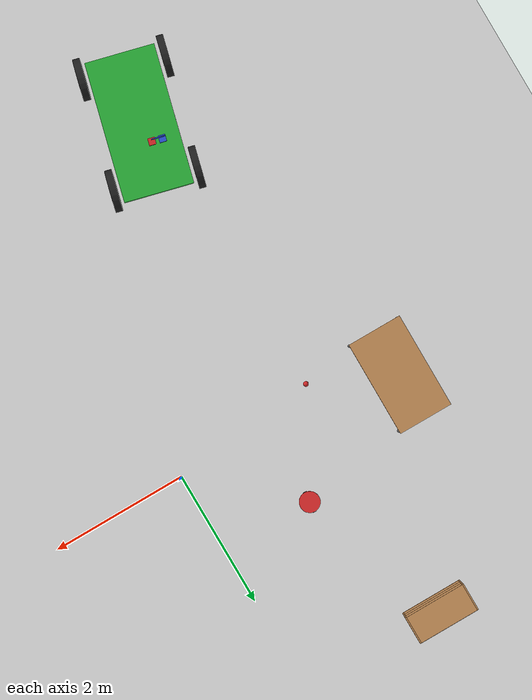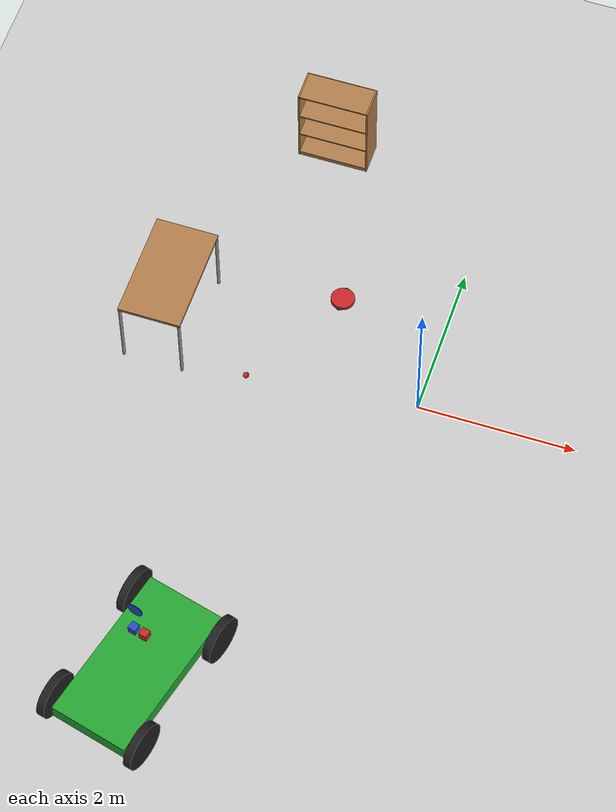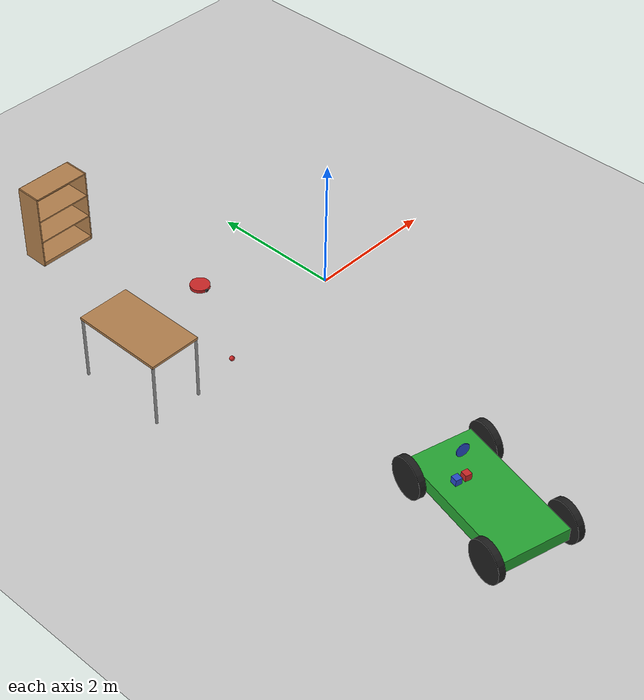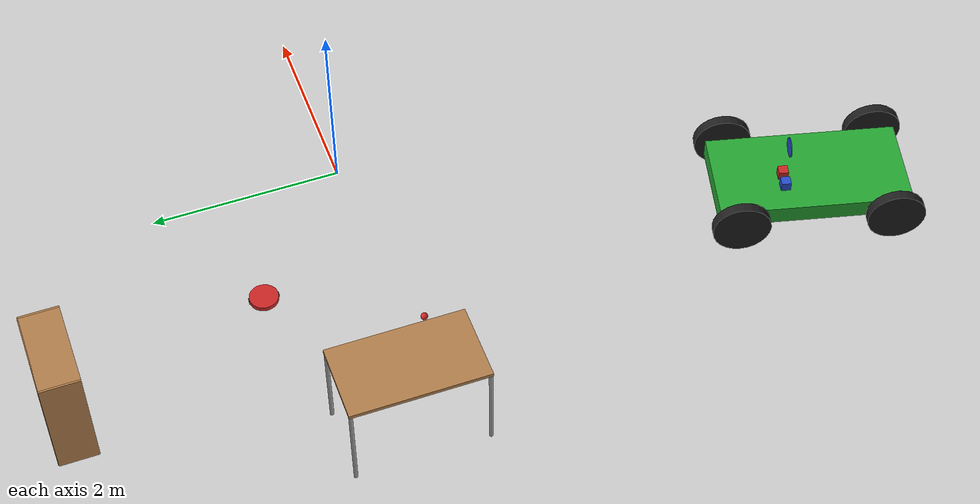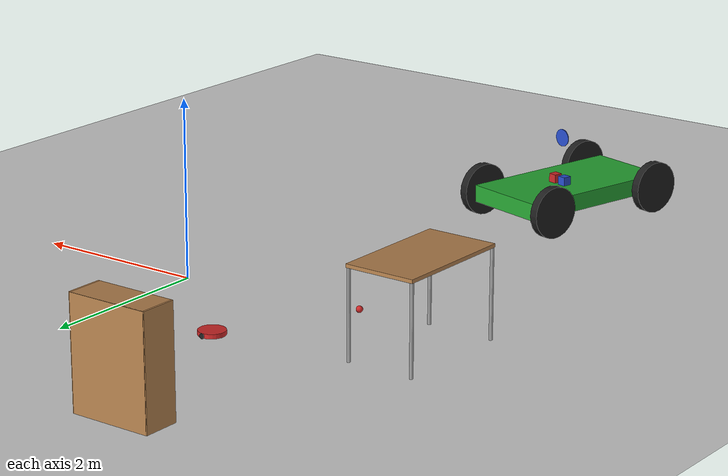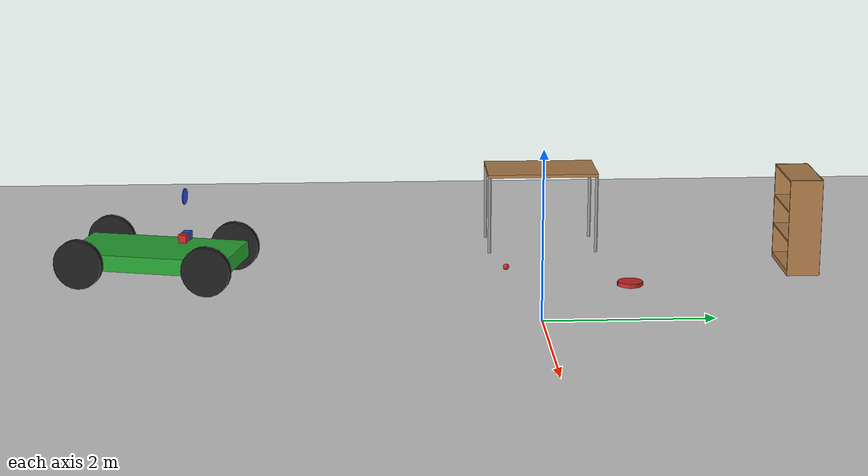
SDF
<sdf version="1.6">
 <world name="default">
  <model name="ground_plane">
   <static>1</static>
   <link name="ground_link">
    <collision name="collision">
     <geometry><plane><normal>0 0 1</normal><size>100 100</size></plane></geometry>
     <surface><friction><ode><mu>100</mu><mu2>50</mu2></ode></friction></surface>
    </collision>
    <visual name="visual">
     <cast_shadows>0</cast_shadows>
     <geometry><plane><normal>0 0 1</normal><size>100 100</size></plane></geometry>
     <material>
      <script><uri>file://media/materials/scripts/gazebo.material</uri><name>Gazebo/Grey</name></script>
     </material>
    </visual>
   </link>
  </model>
  <model name="CleanerBot_0">
   <link name="link_0">
    <inertial>
     <mass>1</mass>
     <inertia><ixx>0.145833</ixx><ixy>0</ixy><ixz>0</ixz><iyy>0.145833</iyy><iyz>0</iyz><izz>0.125</izz></inertia>
    </inertial>
    <pose>0 0 0.012 0 -0 0</pose>
    <visual name="visual">
     <geometry><cylinder><radius>0.15</radius><length>0.05</length></cylinder></geometry>
     <material>
      <lighting>1</lighting>
      <script><uri>file://media/materials/scripts/gazebo.material</uri><name>Gazebo/Red</name></script>
      <shader type="pixel"><normal_map>__default__</normal_map></shader>
      <ambient>0.8 0 0 1</ambient>
      <diffuse>0.7 0.7 0.7 1</diffuse>
      <specular>0.01 0.01 0.01 1</specular>
      <emissive>0 0 0 1</emissive>
     </material>
    </visual>
    <collision name="collision">
     <geometry><cylinder><radius>0.15</radius><length>0.05</length></cylinder></geometry>
     <surface>
      <friction>
       <ode><mu>1</mu><mu2>1</mu2><fdir1>0 0 0</fdir1><slip1>0</slip1><slip2>0</slip2></ode>
       <torsional>
        <coefficient>1</coefficient>
        <patch_radius>0</patch_radius>
        <surface_radius>0</surface_radius>
        <use_patch_radius>1</use_patch_radius>
        <ode><slip>0</slip></ode>
       </torsional>
      </friction>
      <bounce><restitution_coefficient>0</restitution_coefficient><threshold>1e+06</threshold></bounce>
      <contact>
       <collide_without_contact>0</collide_without_contact>
       <collide_without_contact_bitmask>1</collide_without_contact_bitmask>
       <collide_bitmask>1</collide_bitmask>
       <ode>
        <soft_cfm>0</soft_cfm>
        <soft_erp>0.2</soft_erp>
        <kp>1e+13</kp>
        <kd>1</kd>
        <max_vel>0.01</max_vel>
        <min_depth>0</min_depth>
       </ode>
       <bullet>
        <split_impulse>1</split_impulse>
        <split_impulse_penetration_threshold>-0.01</split_impulse_penetration_threshold>
        <soft_cfm>0</soft_cfm>
        <soft_erp>0.2</soft_erp>
        <kp>1e+13</kp>
        <kd>1</kd>
       </bullet>
      </contact>
     </surface>
    </collision>
   </link>
   <link name="link_1">
    <inertial>
     <mass>1</mass>
     <inertia><ixx>0.145833</ixx><ixy>0</ixy><ixz>0</ixz><iyy>0.145833</iyy><iyz>0</iyz><izz>0.125</izz></inertia>
    </inertial>
    <pose>0 0.15 0.007 1.5707 -0 0</pose>
    <visual name="visual">
     <geometry><cylinder><radius>0.03</radius><length>0.01</length></cylinder></geometry>
     <material>
      <lighting>1</lighting>
      <script><uri>file://media/materials/scripts/gazebo.material</uri><name>Gazebo/Black</name></script>
      <shader type="pixel"><normal_map>__default__</normal_map></shader>
      <ambient>0 0 0.8 1</ambient>
      <diffuse>0.7 0.7 0.7 1</diffuse>
      <specular>0.01 0.01 0.01 1</specular>
      <emissive>0 0 0 1</emissive>
     </material>
    </visual>
    <collision name="collision">
     <geometry><cylinder><radius>0.03</radius><length>0.01</length></cylinder></geometry>
     <surface>
      <friction>
       <ode><mu>1</mu><mu2>1</mu2><fdir1>0 0 0</fdir1><slip1>0</slip1><slip2>0</slip2></ode>
       <torsional>
        <coefficient>1</coefficient>
        <patch_radius>0</patch_radius>
        <surface_radius>0</surface_radius>
        <use_patch_radius>1</use_patch_radius>
        <ode><slip>0</slip></ode>
       </torsional>
      </friction>
      <bounce><restitution_coefficient>0</restitution_coefficient><threshold>1e+06</threshold></bounce>
      <contact>
       <collide_without_contact>0</collide_without_contact>
       <collide_without_contact_bitmask>1</collide_without_contact_bitmask>
       <collide_bitmask>1</collide_bitmask>
       <ode>
        <soft_cfm>0</soft_cfm>
        <soft_erp>0.2</soft_erp>
        <kp>1e+13</kp>
        <kd>1</kd>
        <max_vel>0.01</max_vel>
        <min_depth>0</min_depth>
       </ode>
       <bullet>
        <split_impulse>1</split_impulse>
        <split_impulse_penetration_threshold>-0.01</split_impulse_penetration_threshold>
        <soft_cfm>0</soft_cfm>
        <soft_erp>0.2</soft_erp>
        <kp>1e+13</kp>
        <kd>1</kd>
       </bullet>
      </contact>
     </surface>
    </collision>
   </link>
   <link name="link_1_clone">
    <inertial>
     <mass>1</mass>
     <inertia><ixx>0.145833</ixx><ixy>0</ixy><ixz>0</ixz><iyy>0.145833</iyy><iyz>0</iyz><izz>0.125</izz></inertia>
    </inertial>
    <pose>0 -0.15 0.007 1.5707 -0 0</pose>
    <visual name="visual">
     <geometry><cylinder><radius>0.03</radius><length>0.01</length></cylinder></geometry>
     <material>
      <lighting>1</lighting>
      <script><uri>file://media/materials/scripts/gazebo.material</uri><name>Gazebo/Black</name></script>
      <shader type="pixel"><normal_map>__default__</normal_map></shader>
      <ambient>0 0 0.8 1</ambient>
      <diffuse>0.7 0.7 0.7 1</diffuse>
      <specular>0.01 0.01 0.01 1</specular>
      <emissive>0 0 0 1</emissive>
     </material>
    </visual>
    <collision name="collision">
     <geometry><cylinder><radius>0.03</radius><length>0.01</length></cylinder></geometry>
     <surface>
      <friction>
       <ode><mu>1</mu><mu2>1</mu2><fdir1>0 0 0</fdir1><slip1>0</slip1><slip2>0</slip2></ode>
       <torsional>
        <coefficient>1</coefficient>
        <patch_radius>0</patch_radius>
        <surface_radius>0</surface_radius>
        <use_patch_radius>1</use_patch_radius>
        <ode><slip>0</slip></ode>
       </torsional>
      </friction>
      <bounce><restitution_coefficient>0</restitution_coefficient><threshold>1e+06</threshold></bounce>
      <contact>
       <collide_without_contact>0</collide_without_contact>
       <collide_without_contact_bitmask>1</collide_without_contact_bitmask>
       <collide_bitmask>1</collide_bitmask>
       <ode>
        <soft_cfm>0</soft_cfm>
        <soft_erp>0.2</soft_erp>
        <kp>1e+13</kp>
        <kd>1</kd>
        <max_vel>0.01</max_vel>
        <min_depth>0</min_depth>
       </ode>
       <bullet>
        <split_impulse>1</split_impulse>
        <split_impulse_penetration_threshold>-0.01</split_impulse_penetration_threshold>
        <soft_cfm>0</soft_cfm>
        <soft_erp>0.2</soft_erp>
        <kp>1e+13</kp>
        <kd>1</kd>
       </bullet>
      </contact>
     </surface>
    </collision>
   </link>
   <link name="link_2">
    <inertial>
     <mass>1</mass>
     <inertia><ixx>0.1</ixx><ixy>0</ixy><ixz>0</ixz><iyy>0.1</iyy><iyz>0</iyz><izz>0.1</izz></inertia>
    </inertial>
    <pose>0.13 0 -0.013 0 -0 0</pose>
    <visual name="visual">
     <geometry><sphere><radius>0.01</radius></sphere></geometry>
     <material>
      <lighting>1</lighting>
      <script><uri>file://media/materials/scripts/gazebo.material</uri><name>Gazebo/Grey</name></script>
      <shader type="pixel"><normal_map>__default__</normal_map></shader>
      <ambient>0.3 0.3 0.3 1</ambient>
      <diffuse>0.7 0.7 0.7 1</diffuse>
      <specular>0.01 0.01 0.01 1</specular>
      <emissive>0 0 0 1</emissive>
     </material>
    </visual>
    <collision name="collision">
     <geometry><sphere><radius>0.01</radius></sphere></geometry>
     <surface>
      <friction>
       <ode><mu>0</mu><mu2>0</mu2><fdir1>0 0 0</fdir1><slip1>0</slip1><slip2>0</slip2></ode>
       <torsional>
        <coefficient>1</coefficient>
        <patch_radius>0</patch_radius>
        <surface_radius>0</surface_radius>
        <use_patch_radius>1</use_patch_radius>
        <ode><slip>0</slip></ode>
       </torsional>
      </friction>
      <bounce><restitution_coefficient>0</restitution_coefficient><threshold>1e+06</threshold></bounce>
      <contact>
       <collide_without_contact>0</collide_without_contact>
       <collide_without_contact_bitmask>1</collide_without_contact_bitmask>
       <collide_bitmask>1</collide_bitmask>
       <ode>
        <soft_cfm>0</soft_cfm>
        <soft_erp>0.2</soft_erp>
        <kp>1e+13</kp>
        <kd>1</kd>
        <max_vel>0.01</max_vel>
        <min_depth>0</min_depth>
       </ode>
       <bullet>
        <split_impulse>1</split_impulse>
        <split_impulse_penetration_threshold>-0.01</split_impulse_penetration_threshold>
        <soft_cfm>0</soft_cfm>
        <soft_erp>0.2</soft_erp>
        <kp>1e+13</kp>
        <kd>1</kd>
       </bullet>
      </contact>
     </surface>
    </collision>
   </link>
   <link name="link_2_clone">
    <inertial>
     <mass>1</mass>
     <inertia><ixx>0.1</ixx><ixy>0</ixy><ixz>0</ixz><iyy>0.1</iyy><iyz>0</iyz><izz>0.1</izz></inertia>
    </inertial>
    <pose>-0.13 0 -0.013 0 -0 0</pose>
    <visual name="visual">
     <geometry><sphere><radius>0.01</radius></sphere></geometry>
     <material>
      <lighting>1</lighting>
      <script><uri>file://media/materials/scripts/gazebo.material</uri><name>Gazebo/Grey</name></script>
      <shader type="pixel"><normal_map>__default__</normal_map></shader>
      <ambient>0.3 0.3 0.3 1</ambient>
      <diffuse>0.7 0.7 0.7 1</diffuse>
      <specular>0.01 0.01 0.01 1</specular>
      <emissive>0 0 0 1</emissive>
     </material>
    </visual>
    <collision name="collision">
     <geometry><sphere><radius>0.01</radius></sphere></geometry>
     <surface>
      <friction>
       <ode><mu>0</mu><mu2>0</mu2><fdir1>0 0 0</fdir1><slip1>0</slip1><slip2>0</slip2></ode>
       <torsional>
        <coefficient>1</coefficient>
        <patch_radius>0</patch_radius>
        <surface_radius>0</surface_radius>
        <use_patch_radius>1</use_patch_radius>
        <ode><slip>0</slip></ode>
       </torsional>
      </friction>
      <bounce><restitution_coefficient>0</restitution_coefficient><threshold>1e+06</threshold></bounce>
      <contact>
       <collide_without_contact>0</collide_without_contact>
       <collide_without_contact_bitmask>1</collide_without_contact_bitmask>
       <collide_bitmask>1</collide_bitmask>
       <ode>
        <soft_cfm>0</soft_cfm>
        <soft_erp>0.2</soft_erp>
        <kp>1e+13</kp>
        <kd>1</kd>
        <max_vel>0.01</max_vel>
        <min_depth>0</min_depth>
       </ode>
       <bullet>
        <split_impulse>1</split_impulse>
        <split_impulse_penetration_threshold>-0.01</split_impulse_penetration_threshold>
        <soft_cfm>0</soft_cfm>
        <soft_erp>0.2</soft_erp>
        <kp>1e+13</kp>
        <kd>1</kd>
       </bullet>
      </contact>
     </surface>
    </collision>
   </link>
   <joint name="link_0_JOINT_1" type="revolute">
    <parent>link_0</parent>
    <child>link_1_clone</child>
    <axis>
     <xyz>0 0 1</xyz>
     <limit>
      <lower>-1.79769e+308</lower>
      <upper>1.79769e+308</upper>
      <effort>-1</effort>
      <velocity>-1</velocity>
     </limit>
     <dynamics>
      <spring_reference>0</spring_reference>
      <spring_stiffness>0</spring_stiffness>
      <damping>0</damping>
     </dynamics>
     <use_parent_model_frame>0</use_parent_model_frame>
    </axis>
    <physics>
     <ode><limit><cfm>0</cfm><erp>0.2</erp></limit><suspension><cfm>0</cfm><erp>0.2</erp></suspension></ode>
    </physics>
   </joint>
   <joint name="link_0_JOINT_2" type="revolute">
    <parent>link_0</parent>
    <child>link_1</child>
    <axis>
     <xyz>0 0 1</xyz>
     <limit>
      <lower>-1.79769e+308</lower>
      <upper>1.79769e+308</upper>
      <effort>-1</effort>
      <velocity>-1</velocity>
     </limit>
     <dynamics>
      <spring_reference>0</spring_reference>
      <spring_stiffness>0</spring_stiffness>
      <damping>0</damping>
     </dynamics>
     <use_parent_model_frame>0</use_parent_model_frame>
    </axis>
    <physics>
     <ode><limit><cfm>0</cfm><erp>0.2</erp></limit><suspension><cfm>0</cfm><erp>0.2</erp></suspension></ode>
    </physics>
   </joint>
   <joint name="link_0_JOINT_4" type="fixed">
    <parent>link_0</parent>
    <child>link_2</child>
    <physics>
     <ode><limit><cfm>0</cfm><erp>0.2</erp></limit><suspension><cfm>0</cfm><erp>0.2</erp></suspension></ode>
    </physics>
   </joint>
   <joint name="link_0_JOINT_5" type="fixed">
    <parent>link_0</parent>
    <child>link_2_clone</child>
    <physics>
     <ode><limit><cfm>0</cfm><erp>0.2</erp></limit><suspension><cfm>0</cfm><erp>0.2</erp></suspension></ode>
    </physics>
   </joint>
   <static>0</static>
   <pose>-1.35693 1.20002 0.023001 0 -6e-06 -0.056291</pose>
  </model>
  <model name="bookshelf">
   <static>1</static>
   <link name="link">
    <inertial><mass>1</mass></inertial>
    <collision name="back">
     <pose>0 0.005 0.6 0 -0 0</pose>
     <geometry><box><size>0.9 0.01 1.2</size></box></geometry>
    </collision>
    <visual name="visual1">
     <pose>0 0.005 0.6 0 -0 0</pose>
     <geometry><box><size>0.9 0.01 1.2</size></box></geometry>
     <material>
      <script><uri>file://media/materials/scripts/gazebo.material</uri><name>Gazebo/Wood</name></script>
     </material>
    </visual>
    <collision name="left_side">
     <pose>0.45 -0.195 0.6 0 -0 0</pose>
     <geometry><box><size>0.02 0.4 1.2</size></box></geometry>
    </collision>
    <visual name="visual2">
     <pose>0.45 -0.195 0.6 0 -0 0</pose>
     <geometry><box><size>0.02 0.4 1.2</size></box></geometry>
     <material>
      <script><uri>file://media/materials/scripts/gazebo.material</uri><name>Gazebo/Wood</name></script>
     </material>
    </visual>
    <collision name="right_side">
     <pose>-0.45 -0.195 0.6 0 -0 0</pose>
     <geometry><box><size>0.02 0.4 1.2</size></box></geometry>
    </collision>
    <visual name="visual3">
     <pose>-0.45 -0.195 0.6 0 -0 0</pose>
     <geometry><box><size>0.02 0.4 1.2</size></box></geometry>
     <material>
      <script><uri>file://media/materials/scripts/gazebo.material</uri><name>Gazebo/Wood</name></script>
     </material>
    </visual>
    <collision name="bottom">
     <pose>0 -0.195 0.03 0 -0 0</pose>
     <geometry><box><size>0.88 0.4 0.06</size></box></geometry>
    </collision>
    <visual name="visual4">
     <pose>0 -0.195 0.03 0 -0 0</pose>
     <geometry><box><size>0.88 0.4 0.06</size></box></geometry>
     <material>
      <script><uri>file://media/materials/scripts/gazebo.material</uri><name>Gazebo/Wood</name></script>
     </material>
    </visual>
    <collision name="top">
     <pose>0 -0.195 1.19 0 -0 0</pose>
     <geometry><box><size>0.88 0.4 0.02</size></box></geometry>
    </collision>
    <visual name="visual5">
     <pose>0 -0.195 1.19 0 -0 0</pose>
     <geometry><box><size>0.88 0.4 0.02</size></box></geometry>
     <material>
      <script><uri>file://media/materials/scripts/gazebo.material</uri><name>Gazebo/Wood</name></script>
     </material>
    </visual>
    <collision name="low_shelf">
     <pose>0 -0.195 0.43 0 -0 0</pose>
     <geometry><box><size>0.88 0.4 0.02</size></box></geometry>
    </collision>
    <visual name="visual6">
     <pose>0 -0.195 0.43 0 -0 0</pose>
     <geometry><box><size>0.88 0.4 0.02</size></box></geometry>
     <material>
      <script><uri>file://media/materials/scripts/gazebo.material</uri><name>Gazebo/Wood</name></script>
     </material>
    </visual>
    <collision name="high_shelf">
     <pose>0 -0.195 0.8 0 -0 0</pose>
     <geometry><box><size>0.88 0.4 0.02</size></box></geometry>
    </collision>
    <visual name="visual7">
     <pose>0 -0.195 0.8 0 -0 0</pose>
     <geometry><box><size>0.88 0.4 0.02</size></box></geometry>
     <material>
      <script><uri>file://media/materials/scripts/gazebo.material</uri><name>Gazebo/Wood</name></script>
     </material>
    </visual>
   </link>
   <pose>-2.14157 3.5762 0 0 -0 0</pose>
  </model>
  <model name="table_0">
   <static>0</static>
   <link name="link">
    <collision name="surface">
     <pose>0 0 1 0 -0 0</pose>
     <geometry><box><size>1.5 0.8 0.03</size></box></geometry>
     <surface><friction><ode><mu>0.6</mu><mu2>0.6</mu2></ode></friction></surface>
    </collision>
    <visual name="visual1">
     <pose>0 0 1 0 -0 0</pose>
     <geometry><box><size>1.4 0.8 0.04</size></box></geometry>
     <material>
      <script><uri>file://media/materials/scripts/gazebo.material</uri><name>Gazebo/Wood</name></script>
     </material>
    </visual>
    <collision name="front_left_leg">
     <pose>0.68 0.38 0.5 0 -0 0</pose>
     <geometry><cylinder><radius>0.02</radius><length>1</length></cylinder></geometry>
    </collision>
    <visual name="front_left_leg">
     <pose>0.68 0.38 0.5 0 -0 0</pose>
     <geometry><cylinder><radius>0.02</radius><length>1</length></cylinder></geometry>
     <material>
      <script><uri>file://media/materials/scripts/gazebo.material</uri><name>Gazebo/Grey</name></script>
     </material>
    </visual>
    <collision name="front_right_leg">
     <pose>0.68 -0.38 0.5 0 -0 0</pose>
     <geometry><cylinder><radius>0.02</radius><length>1</length></cylinder></geometry>
    </collision>
    <visual name="front_right_leg">
     <pose>0.68 -0.38 0.5 0 -0 0</pose>
     <geometry><cylinder><radius>0.02</radius><length>1</length></cylinder></geometry>
     <material>
      <script><uri>file://media/materials/scripts/gazebo.material</uri><name>Gazebo/Grey</name></script>
     </material>
    </visual>
    <collision name="back_right_leg">
     <pose>-0.68 -0.38 0.5 0 -0 0</pose>
     <geometry><cylinder><radius>0.02</radius><length>1</length></cylinder></geometry>
    </collision>
    <visual name="back_right_leg">
     <pose>-0.68 -0.38 0.5 0 -0 0</pose>
     <geometry><cylinder><radius>0.02</radius><length>1</length></cylinder></geometry>
     <material>
      <script><uri>file://media/materials/scripts/gazebo.material</uri><name>Gazebo/Grey</name></script>
     </material>
    </visual>
    <collision name="back_left_leg">
     <pose>-0.68 0.38 0.5 0 -0 0</pose>
     <geometry><cylinder><radius>0.02</radius><length>1</length></cylinder></geometry>
    </collision>
    <visual name="back_left_leg">
     <pose>-0.68 0.38 0.5 0 -0 0</pose>
     <geometry><cylinder><radius>0.02</radius><length>1</length></cylinder></geometry>
     <material>
      <script><uri>file://media/materials/scripts/gazebo.material</uri><name>Gazebo/Grey</name></script>
     </material>
    </visual>
    <inertial>
     <inertia><ixx>1</ixx><ixy>0</ixy><ixz>0</ixz><iyy>1</iyy><iyz>0</iyz><izz>1</izz></inertia>
     <mass>1</mass>
    </inertial>
   </link>
   <pose>-3.30263 0.293652 -2e-06 0 0 -1.57346</pose>
  </model>
  <model name="cricket_ball">
   <link name="link">
    <pose>0 0 0.0375 0 -0 0</pose>
    <inertial>
     <mass>0.1467</mass>
     <inertia>
      <ixx>8.25187e-05</ixx>
      <ixy>0</ixy>
      <ixz>0</ixz>
      <iyy>8.25187e-05</iyy>
      <iyz>0</iyz>
      <izz>8.25187e-05</izz>
     </inertia>
    </inertial>
    <collision name="collision">
     <geometry><sphere><radius>0.0375</radius></sphere></geometry>
     <surface>
      <contact>
       <poissons_ratio>0.347</poissons_ratio>
       <elastic_modulus>8.8e+09</elastic_modulus>
       <ode><kp>100000</kp><kd>100</kd><max_vel>100</max_vel><min_depth>0.001</min_depth></ode>
      </contact>
      <friction>
       <torsional>
        <coefficient>1</coefficient>
        <use_patch_radius>0</use_patch_radius>
        <surface_radius>0.01</surface_radius>
       </torsional>
      </friction>
     </surface>
    </collision>
    <visual name="visual">
     <geometry><sphere><radius>0.0375</radius></sphere></geometry>
     <material>
      <script><uri>file://media/materials/scripts/gazebo.material</uri><name>Gazebo/Red</name></script>
     </material>
    </visual>
    <velocity_decay><linear>0</linear><angular>0.005</angular></velocity_decay>
   </link>
   <pose>-2.14054 -0.239012 -0.001014 0 -0 0</pose>
  </model>
  <model name="car">
   <link name="chassis">
    <pose>0 0 0.3 0 -0 0</pose>
    <collision name="collision"><geometry><box><size>2 1 0.2</size></box></geometry></collision>
    <visual name="visual">
     <geometry><box><size>2 1 0.2</size></box></geometry>
     <material>
      <script><uri>file://media/materials/scripts/gazebo.material</uri><name>Gazebo/Green</name></script>
     </material>
    </visual>
    <inertial>
     <inertia><ixx>1</ixx><ixy>0</ixy><ixz>0</ixz><iyy>1</iyy><iyz>0</iyz><izz>1</izz></inertia>
     <mass>1</mass>
    </inertial>
   </link>
   <link name="front_left_wheel">
    <pose>0.8 0.6 0.3 -0 1.5707 1.5707</pose>
    <collision name="collision">
     <geometry><cylinder><radius>0.3</radius><length>0.1</length></cylinder></geometry>
    </collision>
    <visual name="visual">
     <geometry><cylinder><radius>0.3</radius><length>0.1</length></cylinder></geometry>
     <material>
      <script><uri>file://media/materials/scripts/gazebo.material</uri><name>Gazebo/Black</name></script>
     </material>
    </visual>
    <inertial>
     <inertia><ixx>1</ixx><ixy>0</ixy><ixz>0</ixz><iyy>1</iyy><iyz>0</iyz><izz>1</izz></inertia>
     <mass>1</mass>
    </inertial>
   </link>
   <link name="front_right_wheel">
    <pose>0.8 -0.6 0.3 -0 1.5707 1.5707</pose>
    <collision name="collision">
     <geometry><cylinder><radius>0.3</radius><length>0.1</length></cylinder></geometry>
    </collision>
    <visual name="visual">
     <geometry><cylinder><radius>0.3</radius><length>0.1</length></cylinder></geometry>
     <material>
      <script><uri>file://media/materials/scripts/gazebo.material</uri><name>Gazebo/Black</name></script>
     </material>
    </visual>
    <inertial>
     <inertia><ixx>1</ixx><ixy>0</ixy><ixz>0</ixz><iyy>1</iyy><iyz>0</iyz><izz>1</izz></inertia>
     <mass>1</mass>
    </inertial>
   </link>
   <link name="back_right_wheel">
    <pose>-0.8 -0.6 0.3 -0 1.5707 1.5707</pose>
    <collision name="collision">
     <geometry><cylinder><radius>0.3</radius><length>0.1</length></cylinder></geometry>
    </collision>
    <visual name="visual">
     <geometry><cylinder><radius>0.3</radius><length>0.1</length></cylinder></geometry>
     <material>
      <script><uri>file://media/materials/scripts/gazebo.material</uri><name>Gazebo/Black</name></script>
     </material>
    </visual>
    <inertial>
     <inertia><ixx>1</ixx><ixy>0</ixy><ixz>0</ixz><iyy>1</iyy><iyz>0</iyz><izz>1</izz></inertia>
     <mass>1</mass>
    </inertial>
   </link>
   <link name="back_left_wheel">
    <pose>-0.8 0.6 0.3 -0 1.5707 1.5707</pose>
    <collision name="collision">
     <geometry><cylinder><radius>0.3</radius><length>0.1</length></cylinder></geometry>
    </collision>
    <visual name="visual">
     <geometry><cylinder><radius>0.3</radius><length>0.1</length></cylinder></geometry>
     <material>
      <script><uri>file://media/materials/scripts/gazebo.material</uri><name>Gazebo/Black</name></script>
     </material>
    </visual>
    <inertial>
     <inertia><ixx>1</ixx><ixy>0</ixy><ixz>0</ixz><iyy>1</iyy><iyz>0</iyz><izz>1</izz></inertia>
     <mass>1</mass>
    </inertial>
   </link>
   <link name="gas_pedal">
    <pose>0.3 0.1 0.5 0 -0 0</pose>
    <collision name="collision"><geometry><box><size>0.1 0.1 0.1</size></box></geometry></collision>
    <visual name="visual">
     <geometry><box><size>0.1 0.1 0.1</size></box></geometry>
     <material>
      <script><uri>file://media/materials/scripts/gazebo.material</uri><name>Gazebo/Red</name></script>
     </material>
    </visual>
    <inertial>
     <inertia><ixx>1</ixx><ixy>0</ixy><ixz>0</ixz><iyy>1</iyy><iyz>0</iyz><izz>1</izz></inertia>
     <mass>1</mass>
    </inertial>
   </link>
   <link name="brake_pedal">
    <pose>0.3 0.25 0.5 0 -0 0</pose>
    <collision name="collision"><geometry><box><size>0.1 0.1 0.1</size></box></geometry></collision>
    <visual name="visual">
     <geometry><box><size>0.1 0.1 0.1</size></box></geometry>
     <material>
      <script><uri>file://media/materials/scripts/gazebo.material</uri><name>Gazebo/Blue</name></script>
     </material>
    </visual>
    <inertial>
     <inertia><ixx>1</ixx><ixy>0</ixy><ixz>0</ixz><iyy>1</iyy><iyz>0</iyz><izz>1</izz></inertia>
     <mass>1</mass>
    </inertial>
   </link>
   <link name="steering_wheel">
    <pose>0.3 0.2 1 0 1.5707 0</pose>
    <collision name="collision">
     <geometry><cylinder><radius>0.1</radius><length>0.01</length></cylinder></geometry>
    </collision>
    <visual name="visual">
     <geometry><cylinder><radius>0.1</radius><length>0.01</length></cylinder></geometry>
     <material>
      <script><uri>file://media/materials/scripts/gazebo.material</uri><name>Gazebo/Blue</name></script>
     </material>
    </visual>
    <inertial>
     <inertia><ixx>1</ixx><ixy>0</ixy><ixz>0</ixz><iyy>1</iyy><iyz>0</iyz><izz>1</izz></inertia>
     <mass>1</mass>
    </inertial>
   </link>
   <joint name="gas_joint" type="prismatic">
    <parent>chassis</parent>
    <child>gas_pedal</child>
    <axis>
     <xyz>1 0 0</xyz>
     <limit><lower>0</lower><upper>0.2</upper></limit>
     <use_parent_model_frame>1</use_parent_model_frame>
     <dynamics><spring_reference>0</spring_reference><spring_stiffness>0</spring_stiffness></dynamics>
    </axis>
   </joint>
   <joint name="brake_joint" type="prismatic">
    <parent>chassis</parent>
    <child>brake_pedal</child>
    <axis>
     <xyz>1 0 0</xyz>
     <limit><lower>0</lower><upper>0.2</upper></limit>
     <use_parent_model_frame>1</use_parent_model_frame>
     <dynamics><spring_reference>0</spring_reference><spring_stiffness>0</spring_stiffness></dynamics>
    </axis>
   </joint>
   <joint name="steering_joint" type="revolute">
    <parent>chassis</parent>
    <child>steering_wheel</child>
    <axis>
     <xyz>1 0 0</xyz>
     <limit><lower>-7.853</lower><upper>7.853</upper></limit>
     <use_parent_model_frame>1</use_parent_model_frame>
     <dynamics><spring_reference>0</spring_reference><spring_stiffness>0</spring_stiffness></dynamics>
    </axis>
   </joint>
   <joint name="front_left_joint" type="revolute2">
    <parent>chassis</parent>
    <child>front_left_wheel</child>
    <axis>
     <xyz>0 0 1</xyz>
     <limit><lower>-0.000786151</lower><upper>-0.000786151</upper></limit>
     <use_parent_model_frame>1</use_parent_model_frame>
     <dynamics><spring_reference>0</spring_reference><spring_stiffness>0</spring_stiffness></dynamics>
    </axis>
    <axis2>
     <xyz>0 1 0</xyz>
     <use_parent_model_frame>1</use_parent_model_frame>
     <dynamics><spring_reference>0</spring_reference><spring_stiffness>0</spring_stiffness></dynamics>
    </axis2>
    <physics><ode><limit><cfm>0</cfm><erp>0.9</erp></limit></ode></physics>
   </joint>
   <joint name="front_right_joint" type="revolute2">
    <parent>chassis</parent>
    <child>front_right_wheel</child>
    <axis>
     <xyz>0 0 1</xyz>
     <limit><lower>-0.000786151</lower><upper>-0.000786151</upper></limit>
     <use_parent_model_frame>1</use_parent_model_frame>
     <dynamics><spring_reference>0</spring_reference><spring_stiffness>0</spring_stiffness></dynamics>
    </axis>
    <axis2>
     <xyz>0 1 0</xyz>
     <use_parent_model_frame>1</use_parent_model_frame>
     <dynamics><spring_reference>0</spring_reference><spring_stiffness>0</spring_stiffness></dynamics>
    </axis2>
    <physics><ode><limit><cfm>0</cfm><erp>0.9</erp></limit></ode></physics>
   </joint>
   <joint name="back_right_joint" type="revolute2">
    <parent>chassis</parent>
    <child>back_right_wheel</child>
    <axis>
     <xyz>0 0 1</xyz>
     <limit><lower>0</lower><upper>0</upper></limit>
     <use_parent_model_frame>1</use_parent_model_frame>
     <dynamics><spring_reference>0</spring_reference><spring_stiffness>0</spring_stiffness></dynamics>
    </axis>
    <axis2>
     <xyz>0 1 0</xyz>
     <use_parent_model_frame>1</use_parent_model_frame>
     <dynamics><spring_reference>0</spring_reference><spring_stiffness>0</spring_stiffness></dynamics>
    </axis2>
    <physics><ode><limit><cfm>0</cfm><erp>0.9</erp></limit></ode></physics>
   </joint>
   <joint name="back_left_joint" type="revolute2">
    <parent>chassis</parent>
    <child>back_left_wheel</child>
    <axis>
     <xyz>0 0 1</xyz>
     <limit><lower>0</lower><upper>0</upper></limit>
     <use_parent_model_frame>1</use_parent_model_frame>
     <dynamics><spring_reference>0</spring_reference><spring_stiffness>0</spring_stiffness></dynamics>
    </axis>
    <axis2>
     <xyz>0 1 0</xyz>
     <use_parent_model_frame>1</use_parent_model_frame>
     <dynamics><spring_reference>0</spring_reference><spring_stiffness>0</spring_stiffness></dynamics>
    </axis2>
    <physics><ode><limit><cfm>0</cfm><erp>0.9</erp></limit></ode></physics>
   </joint>
   <plugin name="vehicle" filename="libVehiclePlugin.so">
    <front_left>front_left_joint</front_left>
    <front_right>front_right_joint</front_right>
    <back_left>back_left_joint</back_left>
    <back_right>back_right_joint</back_right>
    <gas>gas_joint</gas>
    <brake>brake_joint</brake>
    <steering>steering_joint</steering>
    <front_power>10</front_power>
    <rear_power>10</rear_power>
    <tire_angle_range>0.5</tire_angle_range>
    <max_speed>10</max_speed>
    <aero_load>0.1</aero_load>
   </plugin>
   <pose>-1.9782 -4.51316 -0.002615 -0.000273 0.000908 1.31946</pose>
  </model>
 </world>
</sdf>
